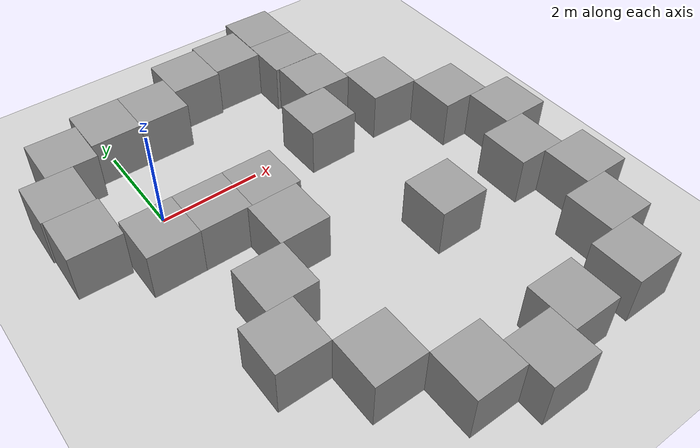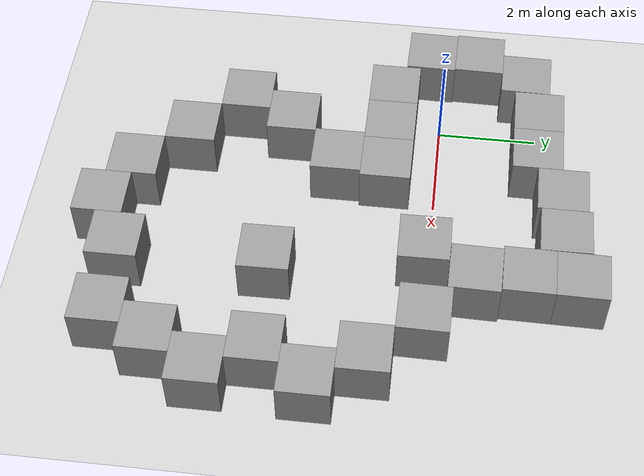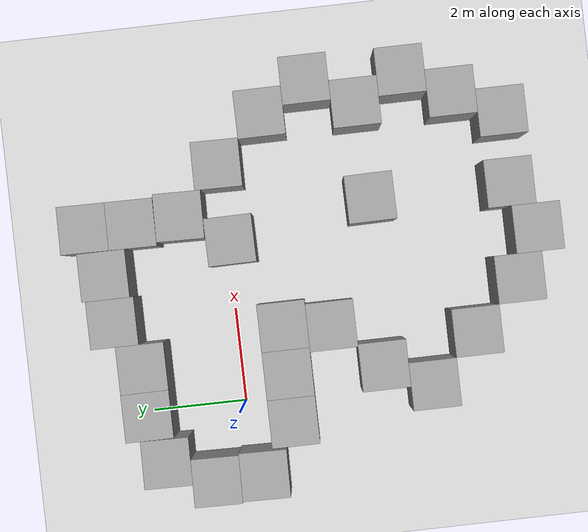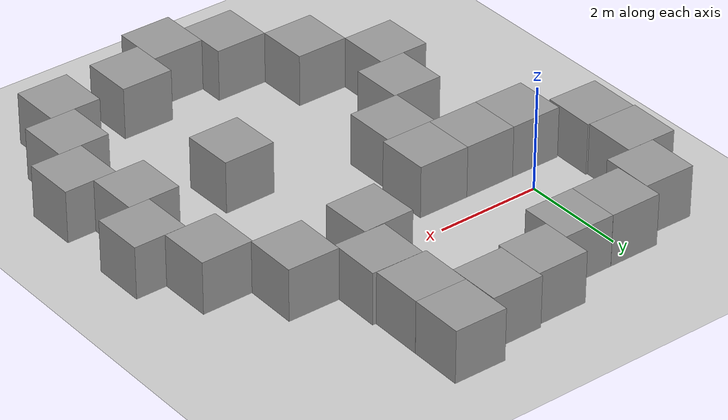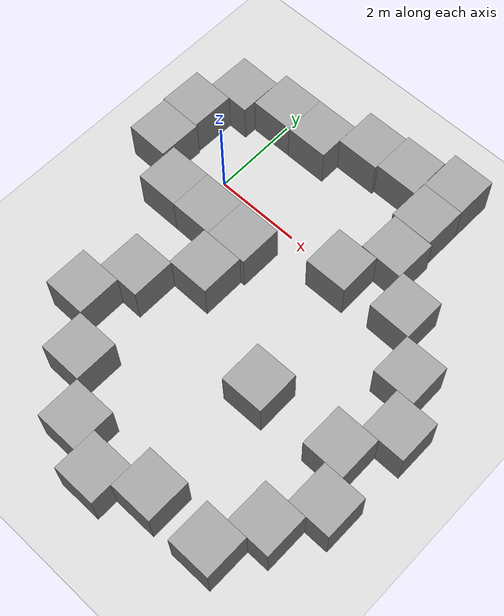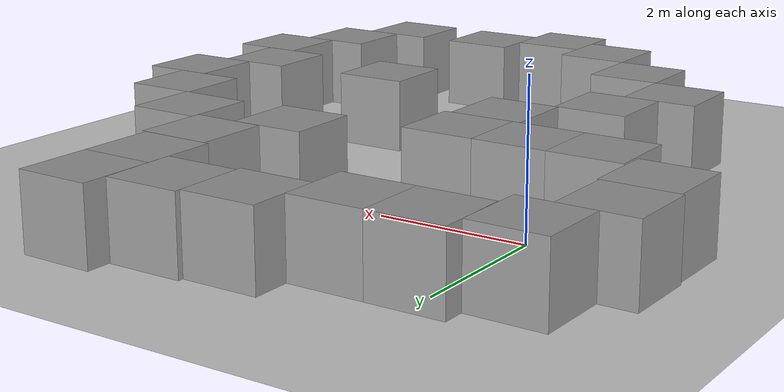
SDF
<sdf version="1.4">
 <world name="maze">
  <physics type="ode">
   <gravity>0 0 -9.81</gravity>
   <ode>
    <solver><type>quick</type><iters>50</iters><sor>1.4</sor></solver>
    <constraints>
     <cfm>0</cfm>
     <erp>0.2</erp>
     <contact_max_correcting_vel>100</contact_max_correcting_vel>
     <contact_surface_layer>0</contact_surface_layer>
    </constraints>
   </ode>
   <real_time_update_rate>1000</real_time_update_rate>
   <max_step_size>0.001</max_step_size>
   <real_time_factor>1</real_time_factor>
  </physics>
  <scene><ambient>0.3 0.3 0.3 1</ambient><background>0.7 0.7 0.7 1</background><shadows>1</shadows></scene>
  <light name="sun" type="directional">
   <pose>0 0 100 0 -0 0</pose>
   <diffuse>0.9 0.9 0.9 1</diffuse>
   <specular>0.1 0.1 0.1 1</specular>
   <attenuation>
    <range>1000</range>
    <constant>0.9</constant>
    <linear>0.01</linear>
    <quadratic>0.001</quadratic>
   </attenuation>
   <direction>-0.2 0 -1</direction>
  </light>
  <light name="light_bulb" type="point">
   <cast_shadows>0</cast_shadows>
   <pose>0 0 10 0 -0 0</pose>
   <diffuse>0.5 0.5 0.5 1</diffuse>
   <specular>0 0 0 1</specular>
   <attenuation>
    <range>80</range>
    <constant>0.9</constant>
    <linear>0.01</linear>
    <quadratic>0.001</quadratic>
   </attenuation>
   <direction>0 0 -1</direction>
  </light>
  <model name="ground_plane">
   <static>1</static>
   <link name="link">
    <collision name="collision">
     <geometry><plane><normal>0 0 1</normal><size>100 100</size></plane></geometry>
     <surface><friction><ode><mu>100</mu><mu2>50</mu2></ode></friction></surface>
    </collision>
    <visual name="visual">
     <cast_shadows>0</cast_shadows>
     <geometry><plane><normal>0 0 1</normal><size>100 100</size></plane></geometry>
     <material>
      <script><uri>file://media/materials/scripts/gazebo.material</uri><name>Gazebo/Grey</name></script>
     </material>
    </visual>
    <velocity_decay><linear>0</linear><angular>0</angular></velocity_decay>
   </link>
  </model>
  <spherical_coordinates>
   <surface_model>EARTH_WGS84</surface_model>
   <latitude_deg>0</latitude_deg>
   <longitude_deg>0</longitude_deg>
   <elevation>0</elevation>
   <heading_deg>0</heading_deg>
  </spherical_coordinates>
  <model name="unit_box_1">
   <pose>4.01011 2.90396 0.5 0 0 -0.012284</pose>
   <link name="link">
    <inertial>
     <mass>1</mass>
     <inertia><ixx>1</ixx><ixy>0</ixy><ixz>0</ixz><iyy>1</iyy><iyz>0</iyz><izz>1</izz></inertia>
    </inertial>
    <collision name="collision"><geometry><box><size>1 1 1</size></box></geometry></collision>
    <visual name="visual">
     <geometry><box><size>1 1 1</size></box></geometry>
     <material>
      <script><uri>file://media/materials/scripts/gazebo.material</uri><name>Gazebo/Grey</name></script>
     </material>
    </visual>
    <velocity_decay><linear>0</linear><angular>0</angular></velocity_decay>
   </link>
   <static>0</static>
  </model>
  <model name="unit_box_3">
   <pose>3.99893 1.90397 0.5 0 0 -0.012376</pose>
   <link name="link">
    <inertial>
     <mass>1</mass>
     <inertia><ixx>1</ixx><ixy>0</ixy><ixz>0</ixz><iyy>1</iyy><iyz>0</iyz><izz>1</izz></inertia>
    </inertial>
    <collision name="collision"><geometry><box><size>1 1 1</size></box></geometry></collision>
    <visual name="visual">
     <geometry><box><size>1 1 1</size></box></geometry>
     <material>
      <script><uri>file://media/materials/scripts/gazebo.material</uri><name>Gazebo/Grey</name></script>
     </material>
    </visual>
    <velocity_decay><linear>0</linear><angular>0</angular></velocity_decay>
   </link>
   <static>0</static>
  </model>
  <model name="unit_box_4">
   <pose>4.05084 0.899598 0.5 -0 -0 -0.019716</pose>
   <link name="link">
    <inertial>
     <mass>1</mass>
     <inertia><ixx>1</ixx><ixy>0</ixy><ixz>0</ixz><iyy>1</iyy><iyz>0</iyz><izz>1</izz></inertia>
    </inertial>
    <collision name="collision"><geometry><box><size>1 1 1</size></box></geometry></collision>
    <visual name="visual">
     <geometry><box><size>1 1 1</size></box></geometry>
     <material>
      <script><uri>file://media/materials/scripts/gazebo.material</uri><name>Gazebo/Grey</name></script>
     </material>
    </visual>
    <velocity_decay><linear>0</linear><angular>0</angular></velocity_decay>
   </link>
   <static>0</static>
  </model>
  <model name="unit_box_5">
   <pose>2.99982 2.58483 0.5 0 -0 0.000817</pose>
   <link name="link">
    <inertial>
     <mass>1</mass>
     <inertia><ixx>1</ixx><ixy>0</ixy><ixz>0</ixz><iyy>1</iyy><iyz>0</iyz><izz>1</izz></inertia>
    </inertial>
    <collision name="collision"><geometry><box><size>1 1 1</size></box></geometry></collision>
    <visual name="visual">
     <geometry><box><size>1 1 1</size></box></geometry>
     <material>
      <script><uri>file://media/materials/scripts/gazebo.material</uri><name>Gazebo/Grey</name></script>
     </material>
    </visual>
    <velocity_decay><linear>0</linear><angular>0</angular></velocity_decay>
   </link>
   <static>0</static>
  </model>
  <model name="unit_box_6">
   <pose>1.99963 2.51098 0.5 0 -0 0.000757</pose>
   <link name="link">
    <inertial>
     <mass>1</mass>
     <inertia><ixx>1</ixx><ixy>0</ixy><ixz>0</ixz><iyy>1</iyy><iyz>0</iyz><izz>1</izz></inertia>
    </inertial>
    <collision name="collision"><geometry><box><size>1 1 1</size></box></geometry></collision>
    <visual name="visual">
     <geometry><box><size>1 1 1</size></box></geometry>
     <material>
      <script><uri>file://media/materials/scripts/gazebo.material</uri><name>Gazebo/Grey</name></script>
     </material>
    </visual>
    <velocity_decay><linear>0</linear><angular>0</angular></velocity_decay>
   </link>
   <static>0</static>
  </model>
  <model name="unit_box_7">
   <pose>0.999878 1.9997 0.5 0 -0 0.000517</pose>
   <link name="link">
    <inertial>
     <mass>1</mass>
     <inertia><ixx>1</ixx><ixy>0</ixy><ixz>0</ixz><iyy>1</iyy><iyz>0</iyz><izz>1</izz></inertia>
    </inertial>
    <collision name="collision"><geometry><box><size>1 1 1</size></box></geometry></collision>
    <visual name="visual">
     <geometry><box><size>1 1 1</size></box></geometry>
     <material>
      <script><uri>file://media/materials/scripts/gazebo.material</uri><name>Gazebo/Grey</name></script>
     </material>
    </visual>
    <velocity_decay><linear>0</linear><angular>0</angular></velocity_decay>
   </link>
   <static>0</static>
  </model>
  <model name="unit_box_8">
   <pose>-0.000188 2.00123 0.5 0 -0 0.000392</pose>
   <link name="link">
    <inertial>
     <mass>1</mass>
     <inertia><ixx>1</ixx><ixy>0</ixy><ixz>0</ixz><iyy>1</iyy><iyz>0</iyz><izz>1</izz></inertia>
    </inertial>
    <collision name="collision"><geometry><box><size>1 1 1</size></box></geometry></collision>
    <visual name="visual">
     <geometry><box><size>1 1 1</size></box></geometry>
     <material>
      <script><uri>file://media/materials/scripts/gazebo.material</uri><name>Gazebo/Grey</name></script>
     </material>
    </visual>
    <velocity_decay><linear>0</linear><angular>0</angular></velocity_decay>
   </link>
   <static>0</static>
  </model>
  <model name="unit_box_9">
   <pose>-1.00807 1.71138 0.5 0 -0 -0.015729</pose>
   <link name="link">
    <inertial>
     <mass>1</mass>
     <inertia><ixx>1</ixx><ixy>0</ixy><ixz>0</ixz><iyy>1</iyy><iyz>0</iyz><izz>1</izz></inertia>
    </inertial>
    <collision name="collision"><geometry><box><size>1 1 1</size></box></geometry></collision>
    <visual name="visual">
     <geometry><box><size>1 1 1</size></box></geometry>
     <material>
      <script><uri>file://media/materials/scripts/gazebo.material</uri><name>Gazebo/Grey</name></script>
     </material>
    </visual>
    <velocity_decay><linear>0</linear><angular>0</angular></velocity_decay>
   </link>
   <static>0</static>
  </model>
  <model name="unit_box_10">
   <pose>-1.49799 0.718933 0.5 0 -0 -0.016874</pose>
   <link name="link">
    <inertial>
     <mass>1</mass>
     <inertia><ixx>1</ixx><ixy>0</ixy><ixz>0</ixz><iyy>1</iyy><iyz>0</iyz><izz>1</izz></inertia>
    </inertial>
    <collision name="collision"><geometry><box><size>1 1 1</size></box></geometry></collision>
    <visual name="visual">
     <geometry><box><size>1 1 1</size></box></geometry>
     <material>
      <script><uri>file://media/materials/scripts/gazebo.material</uri><name>Gazebo/Grey</name></script>
     </material>
    </visual>
    <velocity_decay><linear>0</linear><angular>0</angular></velocity_decay>
   </link>
   <static>0</static>
  </model>
  <model name="unit_box_11">
   <pose>-1.48228 -0.281529 0.5 0 -0 -0.016978</pose>
   <link name="link">
    <inertial>
     <mass>1</mass>
     <inertia><ixx>1</ixx><ixy>0</ixy><ixz>0</ixz><iyy>1</iyy><iyz>0</iyz><izz>1</izz></inertia>
    </inertial>
    <collision name="collision"><geometry><box><size>1 1 1</size></box></geometry></collision>
    <visual name="visual">
     <geometry><box><size>1 1 1</size></box></geometry>
     <material>
      <script><uri>file://media/materials/scripts/gazebo.material</uri><name>Gazebo/Grey</name></script>
     </material>
    </visual>
    <velocity_decay><linear>0</linear><angular>0</angular></velocity_decay>
   </link>
   <static>0</static>
  </model>
  <model name="unit_box_12">
   <pose>-0.451219 -1 0.5 0 -0 1.4e-05</pose>
   <link name="link">
    <inertial>
     <mass>1</mass>
     <inertia><ixx>1</ixx><ixy>0</ixy><ixz>0</ixz><iyy>1</iyy><iyz>0</iyz><izz>1</izz></inertia>
    </inertial>
    <collision name="collision"><geometry><box><size>1 1 1</size></box></geometry></collision>
    <visual name="visual">
     <geometry><box><size>1 1 1</size></box></geometry>
     <material>
      <script><uri>file://media/materials/scripts/gazebo.material</uri><name>Gazebo/Grey</name></script>
     </material>
    </visual>
    <velocity_decay><linear>0</linear><angular>0</angular></velocity_decay>
   </link>
   <static>0</static>
  </model>
  <model name="unit_box_13">
   <pose>0.548783 -0.99999 0.5 0 -0 1.2e-05</pose>
   <link name="link">
    <inertial>
     <mass>1</mass>
     <inertia><ixx>1</ixx><ixy>0</ixy><ixz>0</ixz><iyy>1</iyy><iyz>0</iyz><izz>1</izz></inertia>
    </inertial>
    <collision name="collision"><geometry><box><size>1 1 1</size></box></geometry></collision>
    <visual name="visual">
     <geometry><box><size>1 1 1</size></box></geometry>
     <material>
      <script><uri>file://media/materials/scripts/gazebo.material</uri><name>Gazebo/Grey</name></script>
     </material>
    </visual>
    <velocity_decay><linear>0</linear><angular>0</angular></velocity_decay>
   </link>
   <static>0</static>
  </model>
  <model name="unit_box_14">
   <pose>1.54881 -0.999991 0.5 0 -0 -3.1e-05</pose>
   <link name="link">
    <inertial>
     <mass>1</mass>
     <inertia><ixx>1</ixx><ixy>0</ixy><ixz>0</ixz><iyy>1</iyy><iyz>0</iyz><izz>1</izz></inertia>
    </inertial>
    <collision name="collision"><geometry><box><size>1 1 1</size></box></geometry></collision>
    <visual name="visual">
     <geometry><box><size>1 1 1</size></box></geometry>
     <material>
      <script><uri>file://media/materials/scripts/gazebo.material</uri><name>Gazebo/Grey</name></script>
     </material>
    </visual>
    <velocity_decay><linear>0</linear><angular>0</angular></velocity_decay>
   </link>
   <static>0</static>
  </model>
  <model name="unit_box_15">
   <pose>1.45052 -2 0.5 0 -0 -7e-06</pose>
   <link name="link">
    <inertial>
     <mass>1</mass>
     <inertia><ixx>1</ixx><ixy>0</ixy><ixz>0</ixz><iyy>1</iyy><iyz>0</iyz><izz>1</izz></inertia>
    </inertial>
    <collision name="collision"><geometry><box><size>1 1 1</size></box></geometry></collision>
    <visual name="visual">
     <geometry><box><size>1 1 1</size></box></geometry>
     <material>
      <script><uri>file://media/materials/scripts/gazebo.material</uri><name>Gazebo/Grey</name></script>
     </material>
    </visual>
    <velocity_decay><linear>0</linear><angular>0</angular></velocity_decay>
   </link>
   <static>0</static>
  </model>
  <model name="unit_box_17">
   <pose>3.44272 -0.104252 0.5 0 -0 0.010143</pose>
   <link name="link">
    <inertial>
     <mass>1</mass>
     <inertia><ixx>1</ixx><ixy>0</ixy><ixz>0</ixz><iyy>1</iyy><iyz>0</iyz><izz>1</izz></inertia>
    </inertial>
    <collision name="collision"><geometry><box><size>1 1 1</size></box></geometry></collision>
    <visual name="visual">
     <geometry><box><size>1 1 1</size></box></geometry>
     <material>
      <script><uri>file://media/materials/scripts/gazebo.material</uri><name>Gazebo/Grey</name></script>
     </material>
    </visual>
    <velocity_decay><linear>0</linear><angular>0</angular></velocity_decay>
   </link>
   <static>0</static>
  </model>
  <model name="unit_box_18">
   <pose>3.99921 -3.09885 0.5 0 -0 0.011699</pose>
   <link name="link">
    <inertial>
     <mass>1</mass>
     <inertia><ixx>1</ixx><ixy>0</ixy><ixz>0</ixz><iyy>1</iyy><iyz>0</iyz><izz>1</izz></inertia>
    </inertial>
    <collision name="collision"><geometry><box><size>1 1 1</size></box></geometry></collision>
    <visual name="visual">
     <geometry><box><size>1 1 1</size></box></geometry>
     <material>
      <script><uri>file://media/materials/scripts/gazebo.material</uri><name>Gazebo/Grey</name></script>
     </material>
    </visual>
    <velocity_decay><linear>0</linear><angular>0</angular></velocity_decay>
   </link>
   <static>0</static>
  </model>
  <model name="unit_box_22">
   <pose>0.503458 -3 0.5 -0 -0 -7e-06</pose>
   <link name="link">
    <inertial>
     <mass>1</mass>
     <inertia><ixx>1</ixx><ixy>0</ixy><ixz>0</ixz><iyy>1</iyy><iyz>0</iyz><izz>1</izz></inertia>
    </inertial>
    <collision name="collision"><geometry><box><size>1 1 1</size></box></geometry></collision>
    <visual name="visual">
     <geometry><box><size>1 1 1</size></box></geometry>
     <material>
      <script><uri>file://media/materials/scripts/gazebo.material</uri><name>Gazebo/Grey</name></script>
     </material>
    </visual>
    <velocity_decay><linear>0</linear><angular>0</angular></velocity_decay>
   </link>
   <static>0</static>
  </model>
  <model name="unit_box_24">
   <pose>1 -5 0.5 0 -0 -2e-06</pose>
   <link name="link">
    <inertial>
     <mass>1</mass>
     <inertia><ixx>1</ixx><ixy>0</ixy><ixz>0</ixz><iyy>1</iyy><iyz>0</iyz><izz>1</izz></inertia>
    </inertial>
    <collision name="collision"><geometry><box><size>1 1 1</size></box></geometry></collision>
    <visual name="visual">
     <geometry><box><size>1 1 1</size></box></geometry>
     <material>
      <script><uri>file://media/materials/scripts/gazebo.material</uri><name>Gazebo/Grey</name></script>
     </material>
    </visual>
    <velocity_decay><linear>0</linear><angular>0</angular></velocity_decay>
   </link>
   <static>0</static>
  </model>
  <model name="unit_box_1_0">
   <pose>5.03708 0.002214 0.5 -0 -0 -0.0122</pose>
   <link name="link">
    <inertial>
     <mass>1</mass>
     <inertia><ixx>1</ixx><ixy>0</ixy><ixz>0</ixz><iyy>1</iyy><iyz>0</iyz><izz>1</izz></inertia>
    </inertial>
    <collision name="collision"><geometry><box><size>1 1 1</size></box></geometry></collision>
    <visual name="visual">
     <geometry><box><size>1 1 1</size></box></geometry>
     <material>
      <script><uri>file://media/materials/scripts/gazebo.material</uri><name>Gazebo/Grey</name></script>
     </material>
    </visual>
    <velocity_decay><linear>0</linear><angular>0</angular></velocity_decay>
   </link>
   <static>0</static>
  </model>
  <model name="unit_box_2">
   <pose>6.00135 -1.00206 0.5 0 -0 0.003815</pose>
   <link name="link">
    <inertial>
     <mass>1</mass>
     <inertia><ixx>1</ixx><ixy>0</ixy><ixz>0</ixz><iyy>1</iyy><iyz>0</iyz><izz>1</izz></inertia>
    </inertial>
    <collision name="collision"><geometry><box><size>1 1 1</size></box></geometry></collision>
    <visual name="visual">
     <geometry><box><size>1 1 1</size></box></geometry>
     <material>
      <script><uri>file://media/materials/scripts/gazebo.material</uri><name>Gazebo/Grey</name></script>
     </material>
    </visual>
    <velocity_decay><linear>0</linear><angular>0</angular></velocity_decay>
   </link>
   <static>0</static>
  </model>
  <model name="unit_box_3_0">
   <pose>6.59532 -2.0015 0.5 0 -0 0.000402</pose>
   <link name="link">
    <inertial>
     <mass>1</mass>
     <inertia><ixx>1</ixx><ixy>0</ixy><ixz>0</ixz><iyy>1</iyy><iyz>0</iyz><izz>1</izz></inertia>
    </inertial>
    <collision name="collision"><geometry><box><size>1 1 1</size></box></geometry></collision>
    <visual name="visual">
     <geometry><box><size>1 1 1</size></box></geometry>
     <material>
      <script><uri>file://media/materials/scripts/gazebo.material</uri><name>Gazebo/Grey</name></script>
     </material>
    </visual>
    <velocity_decay><linear>0</linear><angular>0</angular></velocity_decay>
   </link>
   <static>0</static>
  </model>
  <model name="unit_box_4_0">
   <pose>5.99916 -3.00173 0.5 0 -0 0.000226</pose>
   <link name="link">
    <inertial>
     <mass>1</mass>
     <inertia><ixx>1</ixx><ixy>0</ixy><ixz>0</ixz><iyy>1</iyy><iyz>0</iyz><izz>1</izz></inertia>
    </inertial>
    <collision name="collision"><geometry><box><size>1 1 1</size></box></geometry></collision>
    <visual name="visual">
     <geometry><box><size>1 1 1</size></box></geometry>
     <material>
      <script><uri>file://media/materials/scripts/gazebo.material</uri><name>Gazebo/Grey</name></script>
     </material>
    </visual>
    <velocity_decay><linear>0</linear><angular>0</angular></velocity_decay>
   </link>
   <static>0</static>
  </model>
  <model name="unit_box_5_0">
   <pose>6.5561 -4.00165 0.5 0 -0 0.000128</pose>
   <link name="link">
    <inertial>
     <mass>1</mass>
     <inertia><ixx>1</ixx><ixy>0</ixy><ixz>0</ixz><iyy>1</iyy><iyz>0</iyz><izz>1</izz></inertia>
    </inertial>
    <collision name="collision"><geometry><box><size>1 1 1</size></box></geometry></collision>
    <visual name="visual">
     <geometry><box><size>1 1 1</size></box></geometry>
     <material>
      <script><uri>file://media/materials/scripts/gazebo.material</uri><name>Gazebo/Grey</name></script>
     </material>
    </visual>
    <velocity_decay><linear>0</linear><angular>0</angular></velocity_decay>
   </link>
   <static>0</static>
  </model>
  <model name="unit_box_6_0">
   <pose>1e-06 -4 0.5 0 -0 2e-06</pose>
   <link name="link">
    <inertial>
     <mass>1</mass>
     <inertia><ixx>1</ixx><ixy>0</ixy><ixz>0</ixz><iyy>1</iyy><iyz>0</iyz><izz>1</izz></inertia>
    </inertial>
    <collision name="collision"><geometry><box><size>1 1 1</size></box></geometry></collision>
    <visual name="visual">
     <geometry><box><size>1 1 1</size></box></geometry>
     <material>
      <script><uri>file://media/materials/scripts/gazebo.material</uri><name>Gazebo/Grey</name></script>
     </material>
    </visual>
    <velocity_decay><linear>0</linear><angular>0</angular></velocity_decay>
   </link>
   <static>0</static>
  </model>
  <model name="unit_box_7_0">
   <pose>5.99998 -5.0017 0.5 1e-06 -5.16988e-26 -0.000349</pose>
   <link name="link">
    <inertial>
     <mass>1</mass>
     <inertia><ixx>1</ixx><ixy>0</ixy><ixz>0</ixz><iyy>1</iyy><iyz>0</iyz><izz>1</izz></inertia>
    </inertial>
    <collision name="collision"><geometry><box><size>1 1 1</size></box></geometry></collision>
    <visual name="visual">
     <geometry><box><size>1 1 1</size></box></geometry>
     <material>
      <script><uri>file://media/materials/scripts/gazebo.material</uri><name>Gazebo/Grey</name></script>
     </material>
    </visual>
    <velocity_decay><linear>0</linear><angular>0</angular></velocity_decay>
   </link>
   <static>0</static>
  </model>
  <model name="unit_box_8_0">
   <pose>2 -6 0.5 0 -0 0</pose>
   <link name="link">
    <inertial>
     <mass>1</mass>
     <inertia><ixx>1</ixx><ixy>0</ixy><ixz>0</ixz><iyy>1</iyy><iyz>0</iyz><izz>1</izz></inertia>
    </inertial>
    <collision name="collision"><geometry><box><size>1 1 1</size></box></geometry></collision>
    <visual name="visual">
     <geometry><box><size>1 1 1</size></box></geometry>
     <material>
      <script><uri>file://media/materials/scripts/gazebo.material</uri><name>Gazebo/Grey</name></script>
     </material>
    </visual>
    <velocity_decay><linear>0</linear><angular>0</angular></velocity_decay>
   </link>
   <static>0</static>
  </model>
  <model name="unit_box_9_0">
   <pose>3 -6.48046 0.5 -0 -0 -1e-06</pose>
   <link name="link">
    <inertial>
     <mass>1</mass>
     <inertia><ixx>1</ixx><ixy>0</ixy><ixz>0</ixz><iyy>1</iyy><iyz>0</iyz><izz>1</izz></inertia>
    </inertial>
    <collision name="collision"><geometry><box><size>1 1 1</size></box></geometry></collision>
    <visual name="visual">
     <geometry><box><size>1 1 1</size></box></geometry>
     <material>
      <script><uri>file://media/materials/scripts/gazebo.material</uri><name>Gazebo/Grey</name></script>
     </material>
    </visual>
    <velocity_decay><linear>0</linear><angular>0</angular></velocity_decay>
   </link>
   <static>0</static>
  </model>
  <model name="unit_box_10_0">
   <pose>5.48447 -6.00153 0.5 0 0 -0.000352</pose>
   <link name="link">
    <inertial>
     <mass>1</mass>
     <inertia><ixx>1</ixx><ixy>0</ixy><ixz>0</ixz><iyy>1</iyy><iyz>0</iyz><izz>1</izz></inertia>
    </inertial>
    <collision name="collision"><geometry><box><size>1 1 1</size></box></geometry></collision>
    <visual name="visual">
     <geometry><box><size>1 1 1</size></box></geometry>
     <material>
      <script><uri>file://media/materials/scripts/gazebo.material</uri><name>Gazebo/Grey</name></script>
     </material>
    </visual>
    <velocity_decay><linear>0</linear><angular>0</angular></velocity_decay>
   </link>
   <static>0</static>
  </model>
  <model name="unit_box_11_0">
   <pose>4 -6 0.5 0 -0 0</pose>
   <link name="link">
    <inertial>
     <mass>1</mass>
     <inertia><ixx>1</ixx><ixy>0</ixy><ixz>0</ixz><iyy>1</iyy><iyz>0</iyz><izz>1</izz></inertia>
    </inertial>
    <collision name="collision"><geometry><box><size>1 1 1</size></box></geometry></collision>
    <visual name="visual">
     <geometry><box><size>1 1 1</size></box></geometry>
     <material>
      <script><uri>file://media/materials/scripts/gazebo.material</uri><name>Gazebo/Grey</name></script>
     </material>
    </visual>
    <velocity_decay><linear>0</linear><angular>0</angular></velocity_decay>
   </link>
   <static>0</static>
  </model>
 </world>
</sdf>
